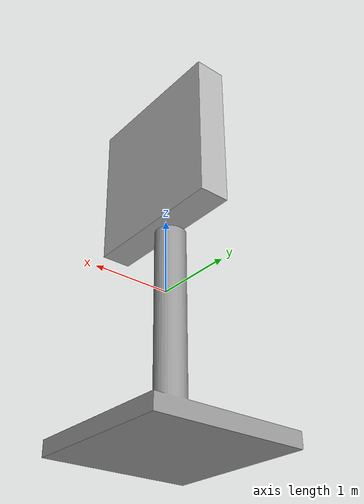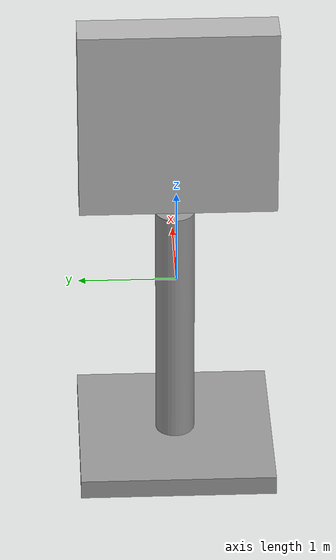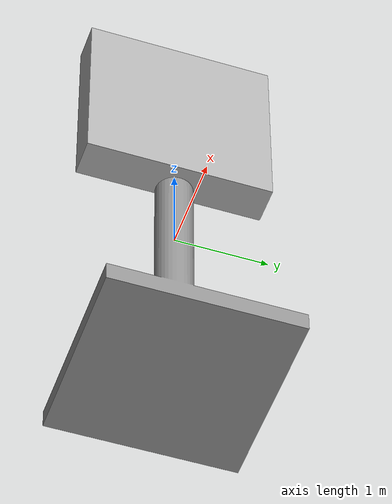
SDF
<?xml version='1.0'?>
<sdf version='1.7'>
  <model name='model_90'>
    <link name='link_0'>
      <inertial>
        <mass>1</mass>
        <inertia>
          <ixx>0.166667</ixx>
          <ixy>0</ixy>
          <ixz>0</ixz>
          <iyy>0.166667</iyy>
          <iyz>0</iyz>
          <izz>0.166667</izz>
        </inertia>
      </inertial>
      <pose>-0.055826 0.016095 -1.86153 0 -0 0</pose>
      <visual name='visual'>
        <pose>0 0 0 0 -0 0</pose>
        <geometry>
          <mesh>
            <uri>/root/autonomous_ws/src/self_driving_car_pkg/models/sign_board_90/meshes/sign_stand.dae</uri>
            <scale>1 1 1</scale>
          </mesh>
        </geometry>
        <material>
          <lighting>1</lighting>
          <script>
            <uri>file://media/materials/scripts/gazebo.material</uri>
            <name>Gazebo/Grey</name>
          </script>
          <shader type='pixel'/>
          <emissive>0 0 0 1</emissive>
        </material>
        <transparency>0</transparency>
        <cast_shadows>1</cast_shadows>
      </visual>
      <collision name='collision'>
        <laser_retro>0</laser_retro>
        <max_contacts>10</max_contacts>
        <pose>0 0 0 0 -0 0</pose>
        <geometry>
          <mesh>
            <uri>/root/autonomous_ws/src/self_driving_car_pkg/models/sign_board_90/meshes/sign_stand.dae</uri>
            <scale>1 1 1</scale>
          </mesh>
        </geometry>
        <surface>
          <friction>
            <ode>
              <mu>1</mu>
              <mu2>1</mu2>
              <fdir1>0 0 0</fdir1>
              <slip1>0</slip1>
              <slip2>0</slip2>
            </ode>
            <torsional>
              <coefficient>1</coefficient>
              <patch_radius>0</patch_radius>
              <surface_radius>0</surface_radius>
              <use_patch_radius>1</use_patch_radius>
              <ode>
                <slip>0</slip>
              </ode>
            </torsional>
          </friction>
          <bounce>
            <restitution_coefficient>0</restitution_coefficient>
            <threshold>1e+06</threshold>
          </bounce>
          <contact>
            <collide_without_contact>0</collide_without_contact>
            <collide_without_contact_bitmask>1</collide_without_contact_bitmask>
            <collide_bitmask>1</collide_bitmask>
            <ode>
              <soft_cfm>0</soft_cfm>
              <soft_erp>0.2</soft_erp>
              <kp>1e+13</kp>
              <kd>1</kd>
              <max_vel>0.01</max_vel>
              <min_depth>0</min_depth>
            </ode>
            <bullet>
              <split_impulse>1</split_impulse>
              <split_impulse_penetration_threshold>-0.01</split_impulse_penetration_threshold>
              <soft_cfm>0</soft_cfm>
              <soft_erp>0.2</soft_erp>
              <kp>1e+13</kp>
              <kd>1</kd>
            </bullet>
          </contact>
        </surface>
      </collision>
    </link>
    <link name='link_1'>
      <inertial>
        <mass>1</mass>
        <inertia>
          <ixx>0.166667</ixx>
          <ixy>0</ixy>
          <ixz>0</ixz>
          <iyy>0.166667</iyy>
          <iyz>0</iyz>
          <izz>0.166667</izz>
        </inertia>
      </inertial>
      <pose>0.055825 -0.016095 1.86153 0 -0 0</pose>
      <visual name='visual'>
        <pose>0 0 0 0 -0 0</pose>
        <geometry>
          <mesh>
            <uri>/root/autonomous_ws/src/self_driving_car_pkg/models/sign_board_90/meshes/sign_board_90.dae</uri>
            <scale>1 1 1</scale>
          </mesh>
        </geometry>
        <material>
          <lighting>1</lighting>
          <script>
            <uri>/root/autonomous_ws/src/self_driving_car_pkg/models/sign_board_90/materials/scripts</uri>
            <uri>/root/autonomous_ws/src/self_driving_car_pkg/models/sign_board_90/materials/textures</uri>
            <name>model_90/Diffuse</name>
          </script>
          <shader type='pixel'/>
          <emissive>0 0 0 1</emissive>
        </material>
        <transparency>0</transparency>
        <cast_shadows>1</cast_shadows>
      </visual>
      <collision name='collision'>
        <laser_retro>0</laser_retro>
        <max_contacts>10</max_contacts>
        <pose>0 0 0 0 -0 0</pose>
        <geometry>
          <mesh>
            <uri>/root/autonomous_ws/src/self_driving_car_pkg/models/sign_board_90/meshes/sign_board_90.dae</uri>
            <scale>1 1 1</scale>
          </mesh>
        </geometry>
        <surface>
          <friction>
            <ode>
              <mu>1</mu>
              <mu2>1</mu2>
              <fdir1>0 0 0</fdir1>
              <slip1>0</slip1>
              <slip2>0</slip2>
            </ode>
            <torsional>
              <coefficient>1</coefficient>
              <patch_radius>0</patch_radius>
              <surface_radius>0</surface_radius>
              <use_patch_radius>1</use_patch_radius>
              <ode>
                <slip>0</slip>
              </ode>
            </torsional>
          </friction>
          <bounce>
            <restitution_coefficient>0</restitution_coefficient>
            <threshold>1e+06</threshold>
          </bounce>
          <contact>
            <collide_without_contact>0</collide_without_contact>
            <collide_without_contact_bitmask>1</collide_without_contact_bitmask>
            <collide_bitmask>1</collide_bitmask>
            <ode>
              <soft_cfm>0</soft_cfm>
              <soft_erp>0.2</soft_erp>
              <kp>1e+13</kp>
              <kd>1</kd>
              <max_vel>0.01</max_vel>
              <min_depth>0</min_depth>
            </ode>
            <bullet>
              <split_impulse>1</split_impulse>
              <split_impulse_penetration_threshold>-0.01</split_impulse_penetration_threshold>
              <soft_cfm>0</soft_cfm>
              <soft_erp>0.2</soft_erp>
              <kp>1e+13</kp>
              <kd>1</kd>
            </bullet>
          </contact>
        </surface>
      </collision>
    </link>
    <joint name='link_0_JOINT_0' type='revolute'>
      <parent>link_0</parent>
      <child>link_1</child>
      <pose>0 0 0 0 -0 0</pose>
      <axis>
        <xyz>1 0 0</xyz>
        <limit>
          <lower>-1.79769e+308</lower>
          <upper>1.79769e+308</upper>
          <effort>-1</effort>
          <velocity>-1</velocity>
        </limit>
        <dynamics>
          <spring_reference>0</spring_reference>
          <spring_stiffness>0</spring_stiffness>
          <damping>0</damping>
        </dynamics>
      </axis>
      <physics>
        <ode>
          <limit>
            <cfm>0</cfm>
            <erp>0.2</erp>
          </limit>
          <suspension>
            <cfm>0</cfm>
            <erp>0.2</erp>
          </suspension>
        </ode>
      </physics>
    </joint>
    <static>1</static>
    <allow_auto_disable>1</allow_auto_disable>
  </model>
</sdf>
